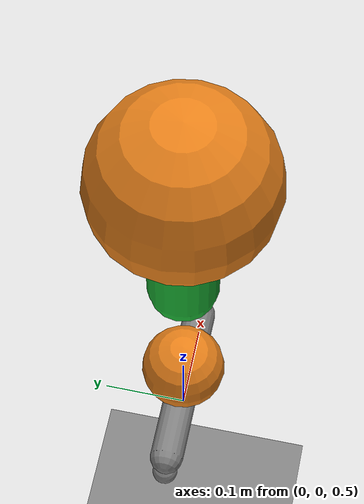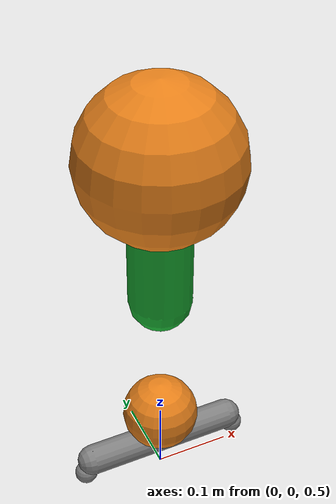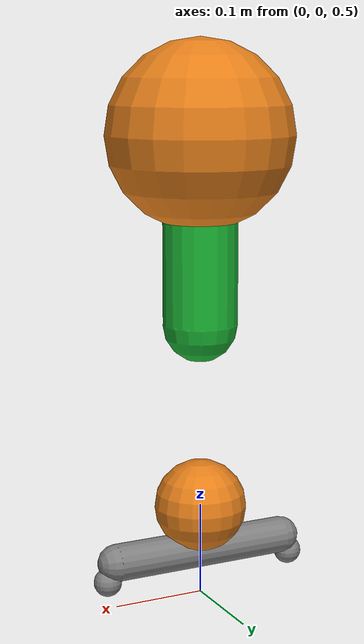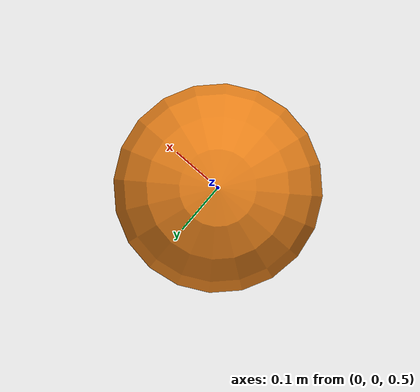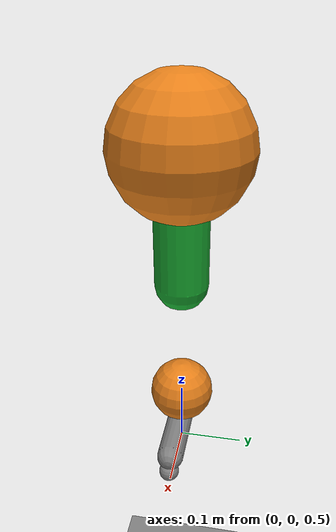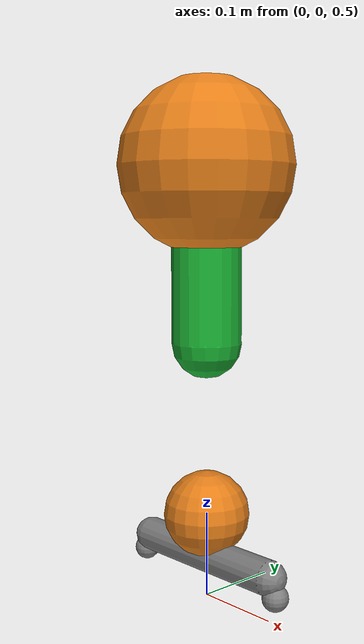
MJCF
<mujoco model='Monopod'>
  <compiler inertiafromgeom='false' angle='degree' eulerseq='zyx'/>
  <size nuser_actuator='1' nuser_sensor='1' nuser_geom='1'/>
  <option timestep='0.0005' iterations='50' solver='PGS' gravity='0 0 -9.81'/>
  <!-- Timestep is set to 0.0005 because our controller runs at 2 kHz -->
  <!-- Larger values still have stable dynamics -->

  <visual>
    <quality shadowsize='4096'/>
    <map znear='0.05'/>
  </visual>

  <worldbody>
    <geom name='floor' pos='0 0 0' size='5 5 .125' type='plane' condim='3' conaffinity='7'/>

    <light mode='trackcom' pos='0 0 5' dir='0 0 -1'/>
    <light directional='true' pos='0 0 3' dir='0 0 -1' diffuse='0.2 0.2 0.2' specular='0 0 0'/>
    <camera name='trackcom' pos='0 -3 2' zaxis='0 -1 0.5' mode='trackcom'/>

    <body name='body' pos='0 0 1'>
        <joint name='rootx' type='slide' axis='1 0 0' pos='0 0 0' limited='false' damping='0' armature='0' stiffness='0' />
        <joint name='rootz' type='slide' axis='0 0 1' pos='0 0 0' limited='false' damping='0' armature='0' stiffness='0' ref='1'/>
        <joint name='rot' type='hinge' axis='0 1 0' pos='0 0 0' limited='false' damping='0' armature='0' stiffness='0' />
        <inertial pos='0 0 0' mass='20' diaginertia = '0.2 0.2 0.2'/>
        <geom type='sphere' size='0.1' pos='0 0 0' rgba='0.9 0.5 0.1 1'/>
        <body name='leg' pos='0 0 0'>
            <geom name="leg_geom"  type="capsule" contype='0' conaffinity='2' fromto="0 0 0 0 0 -0.2" size="0.04" friction="0.9" rgba="0.1 0.7 0.2 1" />
            <joint name='leg_tau' type='hinge' axis='0 1 0' limited='true' range='-25 25' damping='2' armature='0.038125'/>
            <inertial pos='0 0 -0.1' mass='1' diaginertia = '0.01 0.01 0.01'/>
            <joint name='leg_motor' type='slide' axis='0 0 -1' limited='true'  range='0.35 0.6' armature='30' ref='0.4'/>

	    <body name='toe' pos='0 0 -0.4' >
                <geom type='sphere' size='0.05' pos='0 0 0' friction="0.1" rgba ='0.9 0.5 0.1 1'/>
                <inertial pos='0 0 0' mass='1' diaginertia = '0.01 0.01 0.01'/>
                <joint name='leg_spring' type='slide' stiffness='10000' damping='10' limited='true' range='-0.3 0.3'/>

		<body name="foot" pos="0 0 -0.05">
            		<joint name="foot_joint" type="hinge" pos="0 0 0" axis="0 -1 0" range="-45 45" />
            		<geom name="foot_geom" type="capsule" fromto="-0.1 0 0 0.1 0 0" size="0.02" friction="2.0" />
			<site name="foot_heel" type="sphere" pos="-0.11 0 -0.02" size="0.015"/>
			<site name="foot_toe" type="sphere" pos="0.11 0 -0.02" size="0.015"/>
          	</body>

            </body>
        </body>
    </body>
  </worldbody>

  <actuator>
    <motor joint='leg_tau' ctrlrange='-50 50' ctrllimited='true' />
    <motor joint='leg_motor' ctrlrange='-300 300' ctrllimited='true' />
    <motor joint="foot_joint" ctrlrange="-100.0 100.0" ctrllimited="true" />
  </actuator>
</mujoco>
